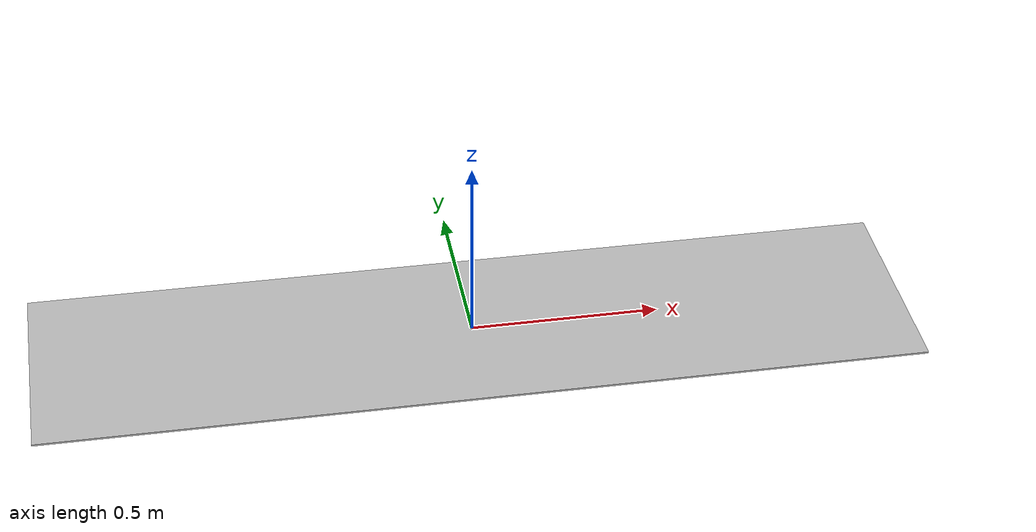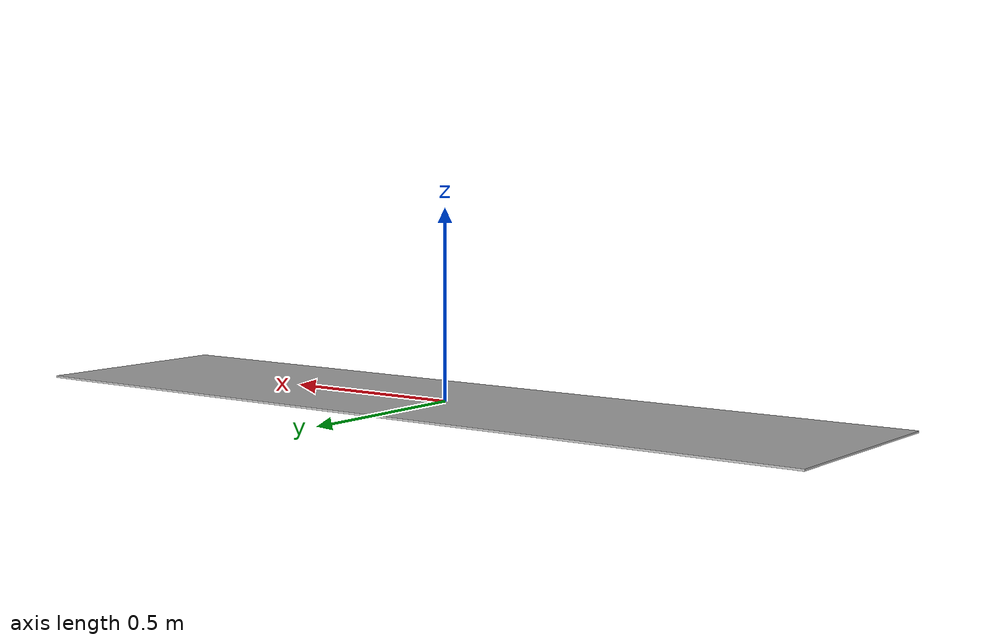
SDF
<?xml version="1.0" ?>
<sdf version="1.5">
  <model name="hardexample">
    <static>true</static>
    <link name="link">
      <collision name="collision">
        <geometry>
          <box>
            <size>2.3216 0.59436 .005</size>
          </box>
        </geometry>
      </collision>
      <visual name="visual">
        <cast_shadows>false</cast_shadows>
        <geometry>
          <box>
            <size>2.3216 0.59436 .005</size>
          </box>
        </geometry>
        <material>
          <script>
            <uri>model://hardexample/materials/scripts</uri>
            <uri>model://hardexample/materials/textures</uri>
            <name>vrc/hardexample</name>
          </script>
        </material>
      </visual>
    </link>
  </model>
</sdf>
